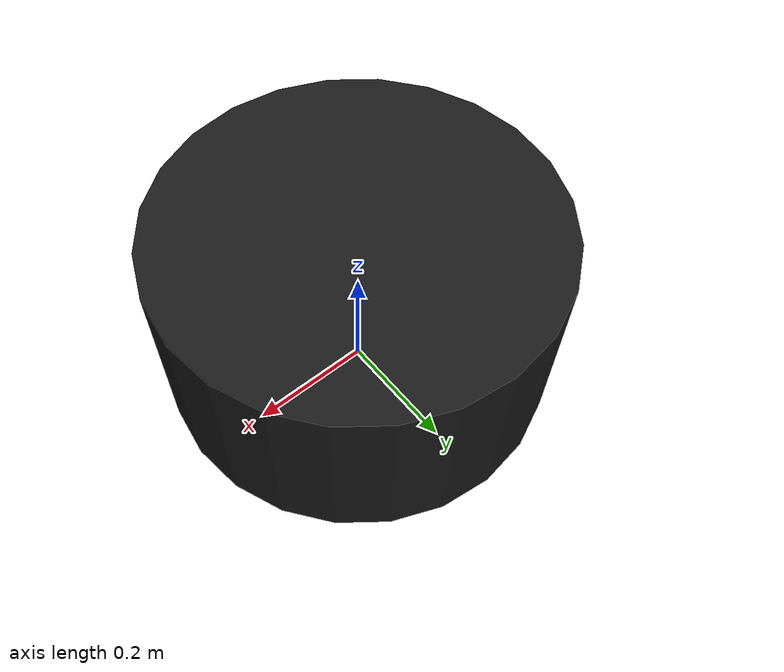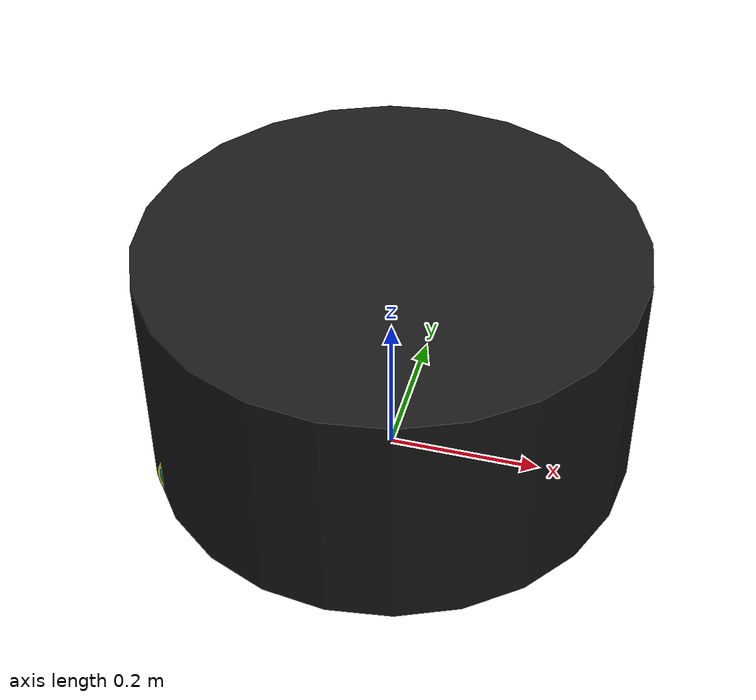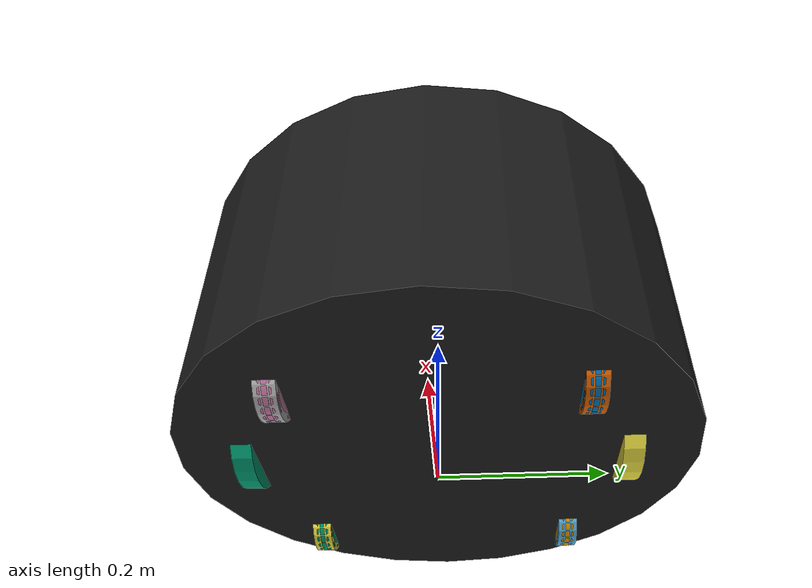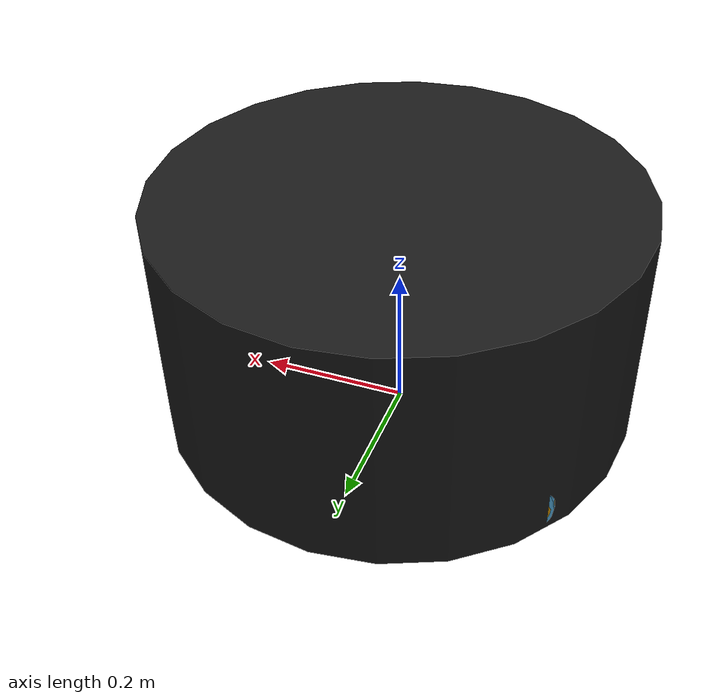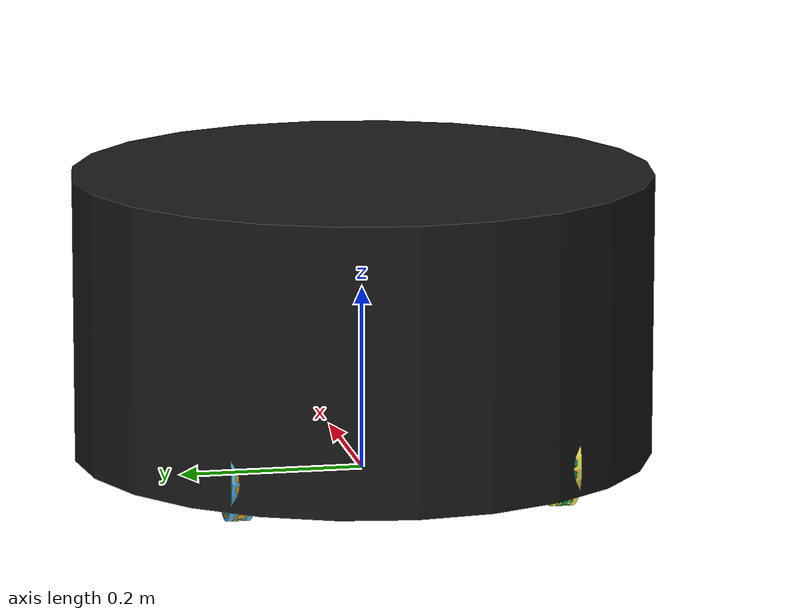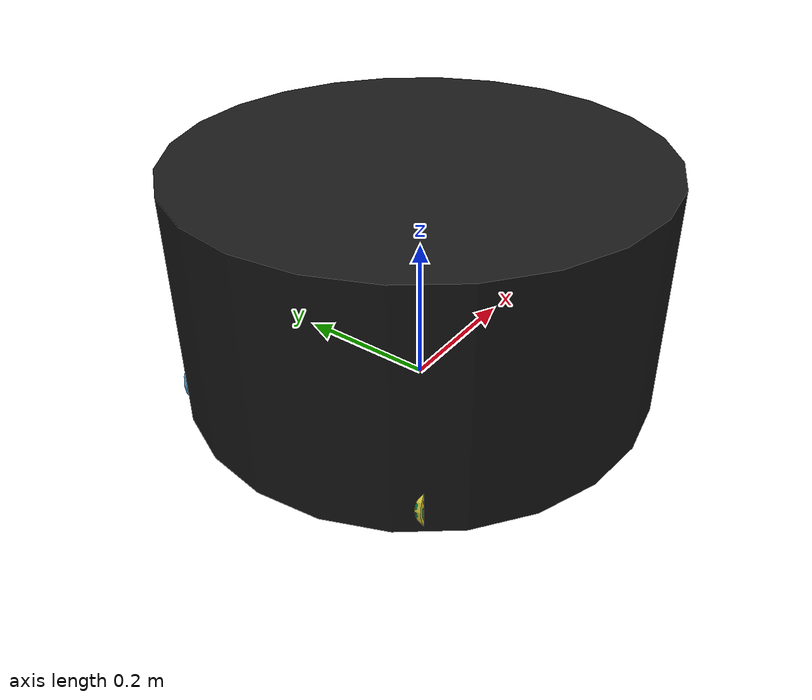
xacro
<?xml version="1.0"?>
<robot name="rb1_base"
	xmlns:xacro="http://www.ros.org/wiki/xacro">

	<!-- Imported elements -->

	<!-- First we import all posible elements defined in the urdf.xacro files. All these elements are defined as macro:xacros -->

	<!-- Import RB1 base elements -->
	<xacro:include filename="$(find rb1_base_description)/urdf/bases/rb1_theround.urdf.xacro" />
	<!-- v3 name from engineering department -->

	<!-- Import RB1 wheels -->
	<xacro:include filename="$(find rb1_base_description)/urdf/wheels/rubber_wheel.urdf.xacro" />

	<!-- Import casters -->
	<xacro:include filename="$(find rb1_base_description)/urdf/wheels/castor.urdf.xacro" />

	<!-- Import Gazebo Stuff -->
	<xacro:include filename="$(find rb1_base_description)/urdf/common.gazebo.xacro" />

	<!-- Global parameters -->
	<xacro:property name="PI" value="3.1415926535897931"/>

	<!-- Flag to select the high or low quality model -->
	<xacro:property name="hq" value="false" />
	<xacro:arg name="prefix" default="robot_"/>
	<xacro:arg name="ros_planar_move_plugin" default="false"/>
	<xacro:arg name="gpu" default="false"/>
	<!-- Robots Elements -->

	<!-- Here we create the robot elements using the xacro:macros imported at the beggining of this file -->
	<xacro:property name="wheel_offset_x" value="0" />
	<xacro:property name="wheel_offset_y" value="0.2304" />
	<xacro:property name="wheel_offset_z" value="-0.0987" />
	<xacro:property name="wheel_separation" value="0.4608" />
    <xacro:property name="wheel_radius" value="0.076" />

	<!-- RB-1 base -->
	<xacro:rb1_theround prefix="$(arg prefix)" publish_bf="true" hq="${hq}" />

	<xacro:gazebo_colors prefix="$(arg prefix)"/>

	<!-- WHEELS -->
	<xacro:rubber_wheel prefix="$(arg prefix)right" parent="$(arg prefix)base_link" reflect="false" hq="${hq}">
		<origin xyz="${wheel_offset_x} -${wheel_offset_y} ${wheel_offset_z}" rpy="0 0 0"/>
	</xacro:rubber_wheel>

	<xacro:rubber_wheel prefix="$(arg prefix)left" parent="$(arg prefix)base_link" reflect="true" hq="${hq}">
		<origin xyz="${wheel_offset_x} ${wheel_offset_y} ${wheel_offset_z}" rpy="0 0 0"/>
	</xacro:rubber_wheel>

	<!-- CASTER WHEELS -->
	<xacro:caster prefix="$(arg prefix)front_left" parent="$(arg prefix)base_link" hq="${hq}">
  		<origin xyz="0.175 0.1725 -0.0513" rpy="0 0 0"/>
  	</xacro:caster>
  	<xacro:caster prefix="$(arg prefix)front_right" parent="$(arg prefix)base_link" hq="${hq}">
  		<origin xyz="0.175 -0.1725 -0.0513" rpy="0 0 0"/>
  	</xacro:caster>
  	<xacro:caster prefix="$(arg prefix)rear_left" parent="$(arg prefix)base_link" hq="${hq}">
  		<origin xyz="-0.175 0.1725 -0.0513" rpy="0 0 0"/>
  	</xacro:caster>
  	<xacro:caster prefix="$(arg prefix)rear_right" parent="$(arg prefix)base_link" hq="${hq}">
  		<origin xyz="-0.175 -0.1725 -0.0513" rpy="0 0 0"/>
  	</xacro:caster>

	<!-- Gazebo ros control plugins -->
	<xacro:ros_control_diff left_joint_name="$(arg prefix)left_wheel_joint" right_joint_name="$(arg prefix)right_wheel_joint" wheel_separation_value="${wheel_separation}" wheel_radius_value="${wheel_radius}" prefix="$(arg prefix)"/>

</robot>

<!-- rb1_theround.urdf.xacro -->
<robot name="rb1_base" xmlns:xacro="http://www.ros.org/wiki/xacro">

  <xacro:macro name="rb1_theround" params="prefix publish_bf hq">

  <!-- Robot mechanical and motor parameters -->
  <xacro:property name="PI" value="3.1415926535897931"/>
  <xacro:property name="wheel_width" value="0.175" />

  <!-- BASE FOOTPRINT -->
  <xacro:if value="${publish_bf}">
    <link name="${prefix}base_footprint">
    </link>

    <joint name="${prefix}base_footprint_joint" type="fixed">
       <origin xyz="0 0 ${wheel_radius - wheel_offset_z}" rpy="0 0 0" />
      <parent link="${prefix}base_footprint"/>
      <child link="${prefix}base_link" />
    </joint>
  </xacro:if>

  <!-- BASE_LINK -->
  <link name="${prefix}base_link">
    <inertial>
      <mass value="25.0" />
      <origin xyz="0 0 0" />
      <inertia  ixx="0.605" ixy="0.0"  ixz="0.0"  iyy="0.5435"  iyz="0.0"  izz="0.981" />
    </inertial>
    <visual>
       <origin xyz="0 0 0" rpy="0 0 0" />
        <geometry>
        <cylinder radius="0.315" length="0.3074"/>
       </geometry>
       <material name="darkgrey">
         <color rgba="0.1 0.1 0.1 1"/>
       </material>
    </visual>
    .<collision>
       <origin xyz="0 0 0" rpy="0 0 0 " />
       <geometry>
        <cylinder radius="0.315" length="0.3074"/>
       </geometry>
    </collision>
  </link>

  <!-- FRONT COVER -->

  <!-- FRONT COVER -->

  <!-- DOCKING CONTACTS -->

  <!-- DOCKING LINK -->

  </xacro:macro>
</robot>

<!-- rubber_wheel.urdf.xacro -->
<robot name="wheel" xmlns:xacro="http://www.ros.org/wiki/xacro">

	<xacro:include filename="$(find rb1_base_description)/urdf/wheels/rubber_wheel.transmission.xacro"/>
	<xacro:include filename="$(find rb1_base_description)/urdf/wheels/rubber_wheel.gazebo.xacro"/>

	<xacro:property name="M_PI" value="3.1415926535897931" />
	<!-- Wheels -->
	<xacro:property name="wheel_radius" value="0.076" />
	<xacro:property name="wheel_height" value="0.025" />
	<xacro:property name="wheel_mass" value="1.0" /> <!-- in kg-->

	<xacro:macro name="cylinder_inertia" params="m r h">
		<inertia	ixx="${m*(3*r*r+h*h)/12}" ixy = "0" ixz = "0"
					iyy="${m*(3*r*r+h*h)/12}" iyz = "0"
					izz="${m*r*r/2}" />
	</xacro:macro>

	<xacro:macro name="rubber_wheel" params="prefix parent *origin reflect hq">

	<!--WHEEL TIRE -->
	<joint name="${prefix}_wheel_joint" type="continuous">
		<parent link="${parent}"/>
		<child link="${prefix}_wheel_link"/>
		<xacro:insert_block name="origin" />
		<axis xyz="0 1 0" rpy="0 0 0" />
		<limit effort="100" velocity="100"/>
		<joint_properties damping="0.0" friction="0.0"/>
	</joint>

	<link name="${prefix}_wheel_link">
		<visual>
		<!-- HIGH RESOLUTION WHEELS -->
		<xacro:if value="${hq}">
			<origin xyz="0 0 0" rpy="0 0 0" />
			<geometry>
				<xacro:if value="${reflect}">
					<mesh filename="package://rb1_base_description/meshes/wheels/wheel_rubber_6inch.dae" />
				</xacro:if>
				<xacro:unless value="${reflect}">
					<mesh filename="package://rb1_base_description/meshes/wheels/wheel_rubber_6inch.dae" />
				</xacro:unless>
			</geometry>
		</xacro:if>
		<!-- LOW RESOLUTION WHEELS -->
		<xacro:unless value="${hq}">
			<origin xyz="0 0 0" rpy="${M_PI/2} 0 0" />
			<geometry>
				<cylinder length="${wheel_height}" radius="${wheel_radius}" />
			</geometry>
		</xacro:unless>
		</visual>

      <collision>
		<origin xyz="0 0 0" rpy="${M_PI/2} 0 0" />
        <geometry>
          <cylinder length="${wheel_height}" radius="${wheel_radius}" />
        </geometry>
      </collision>
      <inertial>
        <mass value="${wheel_mass}" />
        <origin xyz="0 0 0" rpy="${M_PI/2} 0 0"/>
        <xacro:cylinder_inertia  m="${wheel_mass}" r="${wheel_radius}" h="${wheel_height}" />
      </inertial>
    </link>

	<xacro:rubber_wheel_transmission prefix="${prefix}" />
	<xacro:rubber_wheel_gazebo prefix="${prefix}" />

  </xacro:macro>

</robot>

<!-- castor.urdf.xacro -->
<robot name="caster" xmlns:xacro="http://www.ros.org/wiki/xacro">

  <xacro:property name="M_PI" value="3.1415926535897931" />

  <!-- Caster support parameters -->
  <property name="caster_support_mass" value="1.5" /> <!-- in kg-->

  <!-- Caster wheel parameters -->
  <property name="caster_radius" value="0.050" />
  <property name="caster_height" value="0.025" />
  <property name="caster_mass" value="0.25" /> <!-- in kg-->

  <!-- Caster wheel offset-->
  <xacro:property name="caster_wheel_offset_x" value="-0.033" />
  <!-- x,y,z in translation from caster_support to the center of the caster wheel-->
  <xacro:property name="caster_wheel_offset_y" value="0.0" />
  <xacro:property name="caster_wheel_offset_z" value="-0.071" />

  <xacro:macro name="cylinder_inertia" params="m r h">
    <inertia  ixx="${m*(3*r*r+h*h)/12}" ixy = "0" ixz = "0"
              iyy="${m*(3*r*r+h*h)/12}" iyz = "0"
              izz="${m*r*r/2}" />
  </xacro:macro>

  <xacro:macro name="caster" params="prefix parent *origin hq">

  <!--CASTER SUPPORT -->
  <joint name="${prefix}joint_support" type="continuous">
      <parent link="${parent}"/>
      <child link="${prefix}support"/>
      <insert_block name="origin" />
      <axis xyz="0 0 1" rpy="0 ${M_PI} 0" />
      <limit effort="100" velocity="100"/>
      <!-- joint_properties damping="1.5" friction="1.5"/ -->
      <dynamics damping="0" friction="0.01"/>
    </joint>

    <link name="${prefix}support">
      <visual>
        <origin xyz="0 0 0" rpy="0 0 0" />
          <geometry>
	       <mesh filename="package://rb1_base_description/meshes/wheels/castor_wheel.stl" />
          </geometry>
      </visual>

      <inertial>
        <mass value="${caster_support_mass}" />
        <origin xyz="0 0 0" />
        <cylinder_inertia  m="${caster_support_mass}" r="0.010" h="0.010" />  <!--Check these values -->
      </inertial>
    </link>

  <!--CASTER WHEEL -->
  <!-- xacro:caster_wheel prefix="${prefix}" parent="${prefix}support" hq="${hq}" -->
  <xacro:caster_wheel prefix="${prefix}" parent="${prefix}support" hq="${hq}">
		<origin xyz="${caster_wheel_offset_x} ${caster_wheel_offset_y} ${caster_wheel_offset_z}" rpy="0 0 0"/>
   </xacro:caster_wheel>
 </xacro:macro>

 <xacro:macro name="caster_wheel" params="prefix parent *origin hq">
     <joint name="${prefix}joint_wheel" type="continuous">
       <parent link="${parent}"/>
       <child link="${prefix}wheel"/>
       <insert_block name="origin" />
       <axis xyz="0 1 0" rpy="0 0 0" />
       <limit effort="100" velocity="100"/>
       <joint_properties damping="0.1" friction="0.1"/>
    </joint>

    <link name="${prefix}wheel">
      <visual>
        <!-- HIGH RESOLUTION WHEELS -->
       <!-- LOW RESOLUTION WHEELS -->
       <!-- xacro:unless value="${hq}" -->
          <origin xyz="0 0 0" rpy="${M_PI/2} 0 0" />
          <geometry>
            <cylinder length="${caster_height}" radius="${caster_radius}" />
            <!-- sphere radius="${caster_radius}"/ -->
          </geometry>
        <!-- /xacro:unless -->
      </visual>

     <collision>
	  <origin xyz="0 0 0" rpy="${M_PI/2} 0 0" />
	  <!-- origin xyz="0 0 0" rpy="0 0 0" / -->
        <geometry>
		  <!-- mesh filename="package://rb_theron_description/meshes/wheels/mcq_prototype_castor_wheel.dae" / -->
          <cylinder length="${caster_height}" radius="${caster_radius}" />
          <!-- sphere radius="${caster_radius}"/ -->
        </geometry>
		<surface>
          <bounce restitution_coefficient = "1"/>
		</surface>
      </collision>

      <inertial>
        <mass value="${caster_mass}" />
        <origin xyz="0 0 0" />
        <cylinder_inertia  m="${caster_mass}" r="${caster_radius}" h="${caster_height}" />
      </inertial>
    </link>

  <!-- Transmission is important to link the joints and the controller -->

     <gazebo reference="${prefix}_wheel">
			<mu1 value="100.0"/>
			<mu2 value="100.0"/>
			<!-- kp value="10000000.0" / -->
			<kp value="100000.0" />
			<kd value="100.0" />
			<!-- fdir1 value="1 0 0"/ -->
			<material>Gazebo/Black</material>
			<turnGravityOff>false</turnGravityOff>
    </gazebo>

 </xacro:macro>

</robot>
